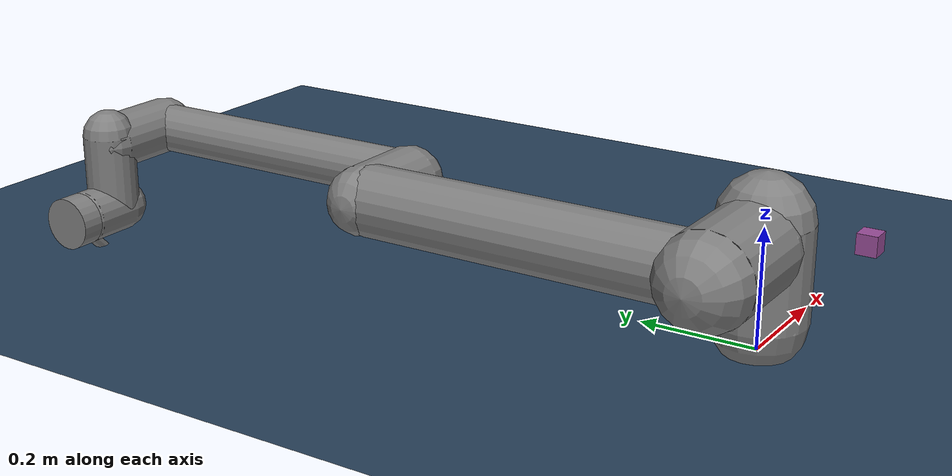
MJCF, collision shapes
<mujoco model="ur10e scene">
  <include file="ur10e.xml"/>

  <statistic center="0.4 0 0.4" extent="1"/>

  <visual>
    <headlight diffuse="0.6 0.6 0.6" ambient="0.1 0.1 0.1" specular="0 0 0"/>
    <rgba haze="0.15 0.25 0.35 1"/>
    <global azimuth="120" elevation="-20"/>
  </visual>

  <asset>
    <texture type="skybox" builtin="gradient" rgb1="0.3 0.5 0.7" rgb2="0 0 0" width="512" height="3072"/>
    <texture type="2d" name="groundplane" builtin="checker" mark="edge" rgb1="0.2 0.3 0.4" rgb2="0.1 0.2 0.3"
      markrgb="0.8 0.8 0.8" width="300" height="300"/>
    <material name="groundplane" texture="groundplane" texuniform="true" texrepeat="5 5" reflectance="0.2"/>
  </asset>

  <worldbody>
    <camera name="front" pos="1.3 0.0 0.7" quat="0.5963678 0.3799282 0.3799282 0.5963678" fovy="45"/>
    <light pos="0 0 1.5" dir="0 0 -1" directional="true"/>
    <geom name="floor" size="0 0 0.05" type="plane" material="groundplane"/>

    <body name="block" pos="0.5 0 .02">
      <freejoint name="block"/>
      <geom name="block" type="box" size=".02 .02 .02" mass="0.1" rgba=".6 .3 .6 1"/>
    </body>
    <!-- Aggiungi un corpo mocap -->
    <body mocap="true" name="mocap_body" pos="0 0 0">
      <geom type="sphere" size="0.01" rgba="1 0 0 0.5"/>
    </body>
    <!-- IO -->
  </worldbody>
  <!-- IO -->
  <sensor>
    <framepos name="block_pos" objtype="geom" objname="block"/>
    <framequat name="block_quat" objtype="geom" objname="block"/>
  </sensor>
  <!-- IO -->
</mujoco>

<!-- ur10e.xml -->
<mujoco model="ur10e">
  <compiler angle="radian" meshdir="assets" autolimits="true"/>

  <option integrator="implicitfast"/>

  <default>
    <default class="ur10e">
      <material specular="0.5" shininess="0.25"/>
      <joint axis="0 1 0" range="-6.28319 6.28319" armature="0.1"/>
      <position ctrlrange="-6.2831 6.2831"/>
      <general biastype="affine" ctrlrange="-6.2831 6.2831" gainprm="5000" biasprm="0 -5000 -500"/>
      <default class="size4">
        <joint damping="10"/>
        <general forcerange="-330 330"/>
      </default>
      <default class="size3">
        <joint damping="5"/>
        <general forcerange="-150 150"/>
        <default class="size3_limited">
          <joint range="-3.1415 3.1415"/>
          <general ctrlrange="-3.1415 3.1415"/>
        </default>
      </default>
      <default class="size2">
        <joint damping="2"/>
        <general forcerange="-56 56"/>
      </default>
      <default class="visual">
        <geom type="mesh" contype="0" conaffinity="0" group="2"/>
      </default>
      <default class="collision">
        <geom type="capsule" group="3"/>
        <default class="eef_collision">
          <geom type="cylinder"/>
        </default>
      </default>
      <site size="0.001" rgba="0.5 0.5 0.5 0.3" group="4"/>
    </default>
  </default>

  <asset>
    <material class="ur10e" name="black" rgba="0.033 0.033 0.033 1"/>
    <material class="ur10e" name="jointgray" rgba="0.278 0.278 0.278 1"/>
    <material class="ur10e" name="linkgray" rgba="0.82 0.82 0.82 1"/>
    <material class="ur10e" name="urblue" rgba="0.49 0.678 0.8 1"/>
    <!-- rgba="0.49 0.678 0.8 1" -->

    <mesh file="base_0.obj"/>
    <mesh file="base_1.obj"/>
    <mesh file="shoulder_0.obj"/>
    <mesh file="shoulder_1.obj"/>
    <mesh file="shoulder_2.obj"/>
    <mesh file="upperarm_0.obj"/>
    <mesh file="upperarm_1.obj"/>
    <mesh file="upperarm_2.obj"/>
    <mesh file="upperarm_3.obj"/>
    <mesh file="forearm_0.obj"/>
    <mesh file="forearm_1.obj"/>
    <mesh file="forearm_2.obj"/>
    <mesh file="forearm_3.obj"/>
    <mesh file="wrist1_0.obj"/>
    <mesh file="wrist1_1.obj"/>
    <mesh file="wrist1_2.obj"/>
    <mesh file="wrist2_0.obj"/>
    <mesh file="wrist2_1.obj"/>
    <mesh file="wrist2_2.obj"/>
    <mesh file="wrist3.obj"/>
  </asset>

  <worldbody>
    <light name="spotlight" mode="targetbodycom" target="wrist_2_link" pos="0 -1 2"/>
    <body name="base" quat="1 0 0 1" childclass="ur10e">
      <inertial mass="4.0" pos="0 0 0" diaginertia="0.0061063308908 0.0061063308908 0.01125"/>
      <geom mesh="base_0" material="black" class="visual"/>
      <geom mesh="base_1" material="jointgray" class="visual"/>
      <body name="shoulder_link" pos="0 0 0.181">
        <inertial pos="0 0 0" mass="7.778" diaginertia="0.0314743 0.0314743 0.0218756"/>
        <joint name="shoulder_pan_joint" class="size4" axis="0 0 1"/>
        <!-- IO -->
        <site name="shoulder_pan_joint"/>
        <!-- IO -->
        <geom mesh="shoulder_0" material="urblue" class="visual"/>
        <geom mesh="shoulder_1" material="black" class="visual"/>
        <geom mesh="shoulder_2" material="jointgray" class="visual"/>
        <geom class="collision" size="0.078 0.08" pos="0 0 -0.05"/>
        <body name="upper_arm_link" pos="0 0.176 0" quat="1 0 1 0">
          <inertial pos="0 0 0.3065" mass="12.93" diaginertia="0.423074 0.423074 0.0363656"/>
          <joint name="shoulder_lift_joint" class="size4"/>
          <!-- IO -->
        <site name="shoulder_lift_joint"/>
          <!-- IO -->
          <geom mesh="upperarm_0" material="black" class="visual"/>
          <geom mesh="upperarm_1" material="jointgray" class="visual"/>
          <geom mesh="upperarm_2" material="urblue" class="visual"/>
          <geom mesh="upperarm_3" material="linkgray" class="visual"/>
          <geom class="collision" pos="0 -0.05 0" quat="1 1 0 0" size="0.078 0.08"/>
          <geom class="collision" size="0.06 0.3" pos="0 0 0.3"/>
          <body name="forearm_link" pos="0 -0.137 0.613">
            <inertial pos="0 0 0.2855" mass="3.87" diaginertia="0.11059 0.11059 0.0108844"/>
            <joint name="elbow_joint" class="size3_limited"/>
             <!-- IO -->
            <site name="elbow_joint"/>
             <!-- IO -->
            <geom mesh="forearm_0" material="urblue" class="visual"/>
            <geom mesh="forearm_1" material="black" class="visual"/>
            <geom mesh="forearm_2" material="jointgray" class="visual"/>
            <geom mesh="forearm_3" material="linkgray" class="visual"/>
            <geom class="collision" pos="0 0.08 0" quat="1 1 0 0" size="0.058 0.065"/>
            <geom class="collision" size="0.043 0.28" pos="0 0 0.29"/>
            <body name="wrist_1_link" pos="0 0 0.571" quat="1 0 1 0">
              <inertial pos="0 0.135 0" quat="0.5 0.5 -0.5 0.5" mass="1.96"
                diaginertia="0.0055125 0.00510825 0.00510825"/>
              <joint name="wrist_1_joint" class="size2"/>
              <!-- IO -->
              <site name="wrist_1_joint"/>
              <!-- IO -->
              <geom mesh="wrist1_0" material="black" class="visual"/>
              <geom mesh="wrist1_1" material="urblue" class="visual"/>
              <geom mesh="wrist1_2" material="jointgray" class="visual"/>
              <geom class="collision" pos="0 0.06 0" quat="1 1 0 0" size="0.05 0.07"/>
              <body name="wrist_2_link" pos="0 0.135 0">
                <inertial pos="0 0 0.12" quat="0.5 0.5 -0.5 0.5" mass="1.96"
                  diaginertia="0.0055125 0.00510825 0.00510825"/>
                <joint name="wrist_2_joint" axis="0 0 1" class="size2"/>
                <!-- IO -->
                <site name="wrist_2_joint"/>
                <!-- IO -->
                <geom mesh="wrist2_0" material="black" class="visual"/>
                <geom mesh="wrist2_1" material="urblue" class="visual"/>
                <geom mesh="wrist2_2" material="jointgray" class="visual"/>
                <geom class="collision" size="0.046 0.065" pos="0 0 0.05"/>
                <geom class="collision" pos="0 0.028 0.12" quat="1 1 0 0" size="0.046 0.043"/>
                <body name="wrist_3_link" pos="0 0 0.12">
                  <!-- IO -->
                  <camera name="handcam_depth" pos="-0.05 0 0" fovy="62" quat="0 1 -1 0"/>
                  <camera name="handcam_rgb" pos="-0.05 0.015 0" fovy="42.5" quat="0 1 -1 0"/>
                  <!-- IO -->
                  <inertial pos="0 0.092 0" quat="0 1 -1 0" mass="0.202"
                    diaginertia="0.000204525 0.000144346 0.000144346"/>
                  <joint name="wrist_3_joint" class="size2"/>
                  <!-- IO -->
                  <site name="wrist_3_joint"/>
                  <!-- IO -->
                  <geom material="linkgray" mesh="wrist3" class="visual"/>
                  <geom class="eef_collision" pos="0 0.097 0" quat="1 1 0 0" size="0.046 0.02"/>
                  <site name="attachment_site" pos="0 0.1 0" quat="-1 1 0 0"/>
                  <!-- IO -->
                  <site name="pinch" pos="0 0 0.1" size="0.01"/>
                  <!-- IO -->
                </body>
              </body>
            </body>
          </body>
        </body>
      </body>
    </body>
  </worldbody>

 <!-- IO -->
  <tendon>
    <spatial name="split" width="0.01">
      <site site="pinch"/>
      <site site="attachment_site"/>
    </spatial>
  </tendon>
  <!-- IO -->

  <actuator>
    <general class="size4" name="shoulder_pan" joint="shoulder_pan_joint"/>
    <general class="size4" name="shoulder_lift" joint="shoulder_lift_joint"/>
    <general class="size3_limited" name="elbow" joint="elbow_joint"/>
    <general class="size2" name="wrist_1" joint="wrist_1_joint"/>
    <general class="size2" name="wrist_2" joint="wrist_2_joint"/>
    <general class="size2" name="wrist_3" joint="wrist_3_joint"/>

     <!--IO  -->
    <general class="ur10e" name="fingers_actuator" tendon="split" forcerange="-5 5" ctrlrange="0 255"
      gainprm="0.3137255 0 0" biasprm="0 -100 -10"/>
      <!-- IO -->
  </actuator>

  <keyframe>
    <key name="home" qpos="-1.5708 -1.5708 1.5708 -1.5708 -1.5708 0 0 0 0 0 0 0 0" ctrl="-1.5708 -1.5708 1.5708 -1.5708 -1.5708 0 0" />

    <!-- PROVATO qpos="-0.126 -1.45 -1.51 -1.76 4.84 0" ctrl="-0.126 -1.45 -1.51 -1.76 4.84 0" MA NON CAMBIA NULLA AL LANCIO-->
  </keyframe>

  <!-- IO -->
  <sensor>
  <jointpos name="ur10/joint1_pos" joint="shoulder_pan_joint"/>
  <jointpos name="ur10/joint2_pos" joint="shoulder_lift_joint"/>
  <jointpos name="ur10/joint3_pos" joint="elbow_joint"/>
  <jointpos name="ur10/joint4_pos" joint="wrist_1_joint"/>
  <jointpos name="ur10/joint5_pos" joint="wrist_2_joint"/>
  <jointpos name="ur10/joint6_pos" joint="wrist_3_joint"/>

  <jointvel name="ur10/joint1_vel" joint="shoulder_pan_joint"/>
  <jointvel name="ur10/joint2_vel" joint="shoulder_lift_joint"/>
  <jointvel name="ur10/joint3_vel" joint="elbow_joint"/>
  <jointvel name="ur10/joint4_vel" joint="wrist_1_joint"/>
  <jointvel name="ur10/joint5_vel" joint="wrist_2_joint"/>
  <jointvel name="ur10/joint6_vel" joint="wrist_3_joint"/>

  <torque name="ur10/joint1_torque" site="shoulder_pan_joint"/>
  <torque name="ur10/joint2_torque" site="shoulder_lift_joint"/>
  <torque name="ur10/joint3_torque" site="elbow_joint"/>
  <torque name="ur10/joint4_torque" site="wrist_1_joint"/>
  <torque name="ur10/joint5_torque" site="wrist_2_joint"/>
  <torque name="ur10/joint6_torque" site="wrist_3_joint"/>

  <force name="ur10/wrist_force" site="attachment_site"/>

  <framepos name="ur10/pinch_pos" objtype="site" objname="pinch"/>
  <framequat name="ur10/pinch_quat" objtype="site" objname="pinch"/>
  <framelinvel name="ur10/pinch_vel" objtype="site" objname="pinch"/>
  <frameangvel name="ur10/pinch_angvel" objtype="site" objname="pinch"/>
</sensor>
<!-- IO -->

</mujoco>
